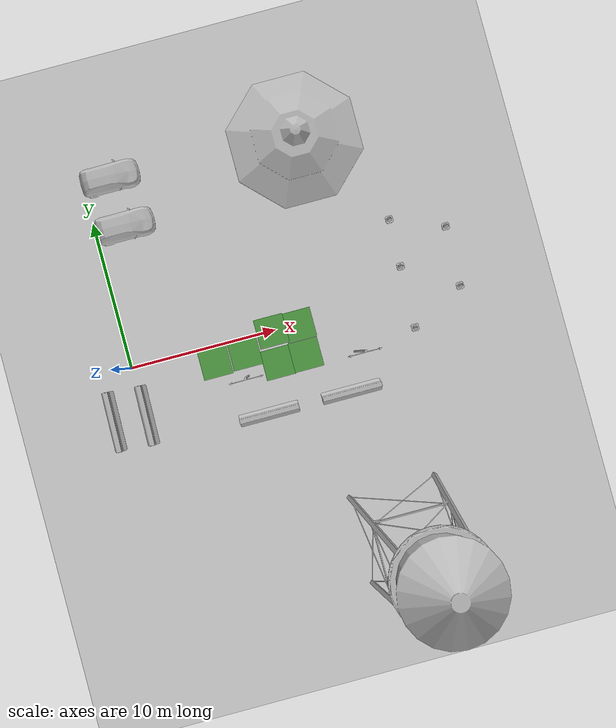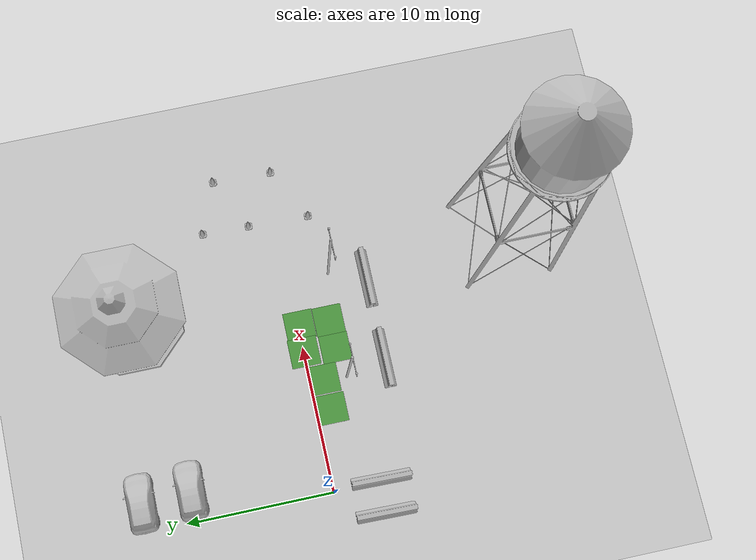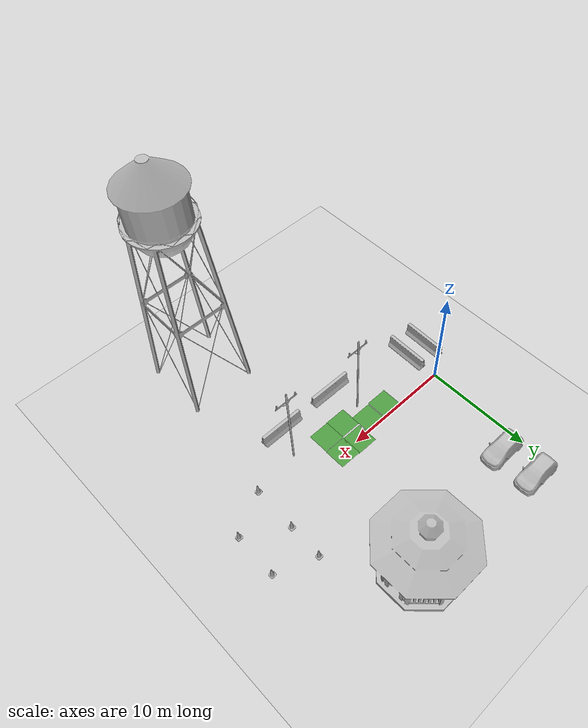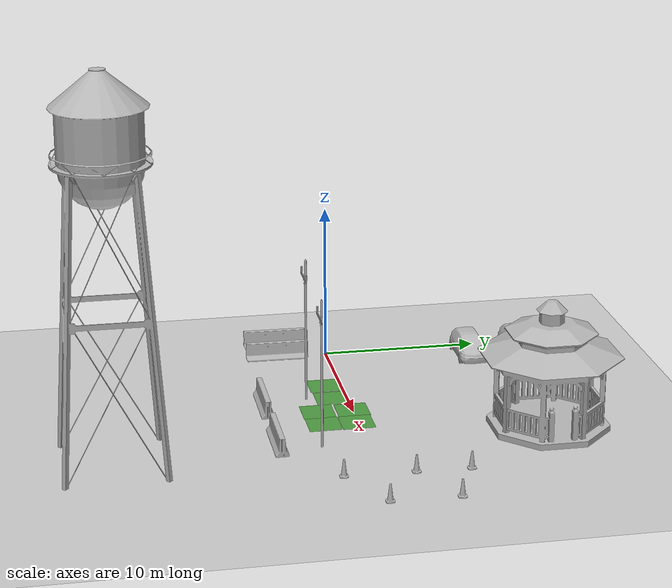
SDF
<sdf version="1.7">
 <world name="default">
  <light name="sun" type="directional">
   <pose>0 0 10 0 -0 0</pose>
   <diffuse>0.8 0.8 0.8 1</diffuse>
   <specular>0.2 0.2 0.2 1</specular>
   <attenuation>
    <range>1000</range>
    <constant>0.9</constant>
    <linear>0.01</linear>
    <quadratic>0.001</quadratic>
   </attenuation>
   <direction>-0.5 0.1 -0.9</direction>
   <spot><inner_angle>0</inner_angle><outer_angle>0</outer_angle><falloff>0</falloff></spot>
  </light>
  <model name="ground_plane">
   <static>1</static>
   <link name="link">
    <collision name="collision">
     <geometry><plane><normal>0 0 1</normal><size>100 100</size></plane></geometry>
     <surface><friction><ode><mu>100</mu><mu2>50</mu2></ode></friction></surface>
    </collision>
    <visual name="visual">
     <cast_shadows>0</cast_shadows>
     <geometry><plane><normal>0 0 1</normal><size>100 100</size></plane></geometry>
     <material>
      <script><uri>file://media/materials/scripts/gazebo.material</uri><name>Gazebo/Grey</name></script>
     </material>
    </visual>
   </link>
  </model>
  <gravity>0 0 -9.8</gravity>
  <magnetic_field>6e-06 2.3e-05 -4.2e-05</magnetic_field>
  <atmosphere type="adiabatic"/>
  <physics type="ode">
   <max_step_size>0.001</max_step_size>
   <real_time_factor>1</real_time_factor>
   <real_time_update_rate>1000</real_time_update_rate>
  </physics>
  <scene><ambient>0.4 0.4 0.4 1</ambient><background>0.7 0.7 0.7 1</background><shadows>1</shadows></scene>
  <audio><device>default</device></audio>
  <spherical_coordinates>
   <surface_model>EARTH_WGS84</surface_model>
   <latitude_deg>0</latitude_deg>
   <longitude_deg>0</longitude_deg>
   <elevation>0</elevation>
   <heading_deg>0</heading_deg>
  </spherical_coordinates>
  <model name="gazebo">
   <static>1</static>
   <link name="link">
    <collision name="collision">
     <geometry><mesh><scale>3 3 2.5</scale><uri>model://gazebo/meshes/gazebo.dae</uri></mesh></geometry>
    </collision>
    <visual name="visual">
     <geometry><mesh><scale>3 3 2.5</scale><uri>model://gazebo/meshes/gazebo.dae</uri></mesh></geometry>
    </visual>
   </link>
   <pose>14.1842 11.1605 0 0 -0 0</pose>
  </model>
  <model name="Construction Cone">
   <link name="link">
    <collision name="collision">
     <geometry>
      <mesh><scale>10 10 10</scale><uri>model://construction_cone/meshes/construction_cone.dae</uri></mesh>
     </geometry>
    </collision>
    <visual name="visual">
     <geometry>
      <mesh><scale>10 10 10</scale><uri>model://construction_cone/meshes/construction_cone.dae</uri></mesh>
     </geometry>
    </visual>
    <inertial>
     <inertia><ixx>1</ixx><ixy>0</ixy><ixz>0</ixz><iyy>1</iyy><iyz>0</iyz><izz>1</izz></inertia>
     <mass>1</mass>
    </inertial>
   </link>
   <pose>19.2424 5.15999 0 -2e-06 -0 -0</pose>
  </model>
  <model name="Construction Cone_0">
   <link name="link">
    <collision name="collision">
     <geometry>
      <mesh><scale>10 10 10</scale><uri>model://construction_cone/meshes/construction_cone.dae</uri></mesh>
     </geometry>
    </collision>
    <visual name="visual">
     <geometry>
      <mesh><scale>10 10 10</scale><uri>model://construction_cone/meshes/construction_cone.dae</uri></mesh>
     </geometry>
    </visual>
    <inertial>
     <inertia><ixx>1</ixx><ixy>0</ixy><ixz>0</ixz><iyy>1</iyy><iyz>0</iyz><izz>1</izz></inertia>
     <mass>1</mass>
    </inertial>
   </link>
   <pose>19.1525 1.9285 -0 0 -1e-06 0</pose>
  </model>
  <model name="Construction Cone_1">
   <link name="link">
    <collision name="collision">
     <geometry>
      <mesh><scale>10 10 10</scale><uri>model://construction_cone/meshes/construction_cone.dae</uri></mesh>
     </geometry>
    </collision>
    <visual name="visual">
     <geometry>
      <mesh><scale>10 10 10</scale><uri>model://construction_cone/meshes/construction_cone.dae</uri></mesh>
     </geometry>
    </visual>
    <inertial>
     <inertia><ixx>1</ixx><ixy>0</ixy><ixz>0</ixz><iyy>1</iyy><iyz>0</iyz><izz>1</izz></inertia>
     <mass>1</mass>
    </inertial>
   </link>
   <pose>19.023 -2.26898 -0 0 -1e-06 0</pose>
  </model>
  <model name="Construction Cone_2">
   <link name="link">
    <collision name="collision">
     <geometry>
      <mesh><scale>10 10 10</scale><uri>model://construction_cone/meshes/construction_cone.dae</uri></mesh>
     </geometry>
    </collision>
    <visual name="visual">
     <geometry>
      <mesh><scale>10 10 10</scale><uri>model://construction_cone/meshes/construction_cone.dae</uri></mesh>
     </geometry>
    </visual>
    <inertial>
     <inertia><ixx>1</ixx><ixy>0</ixy><ixz>0</ixz><iyy>1</iyy><iyz>0</iyz><izz>1</izz></inertia>
     <mass>1</mass>
    </inertial>
   </link>
   <pose>22.7685 3.74531 -0 0 -1e-06 0</pose>
  </model>
  <model name="Construction Cone_3">
   <link name="link">
    <collision name="collision">
     <geometry>
      <mesh><scale>10 10 10</scale><uri>model://construction_cone/meshes/construction_cone.dae</uri></mesh>
     </geometry>
    </collision>
    <visual name="visual">
     <geometry>
      <mesh><scale>10 10 10</scale><uri>model://construction_cone/meshes/construction_cone.dae</uri></mesh>
     </geometry>
    </visual>
    <inertial>
     <inertia><ixx>1</ixx><ixy>0</ixy><ixz>0</ixz><iyy>1</iyy><iyz>0</iyz><izz>1</izz></inertia>
     <mass>1</mass>
    </inertial>
   </link>
   <pose>22.6603 -0.339241 -8e-06 0 1e-06 0</pose>
  </model>
  <model name="jersey_barrier_2">
   <static>1</static>
   <link name="link">
    <visual name="visual">
     <geometry><mesh><uri>model://jersey_barrier/meshes/jersey_barrier.dae</uri></mesh></geometry>
    </visual>
    <collision name="upright">
     <pose>0 0 0.5715 0 -0 0</pose>
     <geometry><box><size>4.06542 0.3063 1.143</size></box></geometry>
    </collision>
    <collision name="base">
     <pose>0 0 0.032258 0 -0 0</pose>
     <geometry><box><size>4.06542 0.8107 0.064516</size></box></geometry>
    </collision>
    <collision name="base2">
     <pose>0 0 0.1 0 -0 0</pose>
     <geometry><box><size>4.06542 0.65 0.1</size></box></geometry>
    </collision>
    <collision name="base3">
     <pose>0 0 0.2 0 -0 0</pose>
     <geometry><box><size>4.06542 0.5 0.1</size></box></geometry>
    </collision>
    <collision name="left-angle">
     <pose>0 -0.224 0.2401 0.9 -0 0</pose>
     <geometry><box><size>4.06542 0.5 0.064516</size></box></geometry>
    </collision>
    <collision name="right-angle">
     <pose>0 0.224 0.2401 -0.9 0 0</pose>
     <geometry><box><size>4.06542 0.5 0.064516</size></box></geometry>
    </collision>
   </link>
   <pose>8.12398 -5.29357 0 0 -0 0</pose>
  </model>
  <model name="jersey_barrier_3">
   <static>1</static>
   <link name="link">
    <visual name="visual">
     <geometry><mesh><uri>model://jersey_barrier/meshes/jersey_barrier.dae</uri></mesh></geometry>
    </visual>
    <collision name="upright">
     <pose>0 0 0.5715 0 -0 0</pose>
     <geometry><box><size>4.06542 0.3063 1.143</size></box></geometry>
    </collision>
    <collision name="base">
     <pose>0 0 0.032258 0 -0 0</pose>
     <geometry><box><size>4.06542 0.8107 0.064516</size></box></geometry>
    </collision>
    <collision name="base2">
     <pose>0 0 0.1 0 -0 0</pose>
     <geometry><box><size>4.06542 0.65 0.1</size></box></geometry>
    </collision>
    <collision name="base3">
     <pose>0 0 0.2 0 -0 0</pose>
     <geometry><box><size>4.06542 0.5 0.1</size></box></geometry>
    </collision>
    <collision name="left-angle">
     <pose>0 -0.224 0.2401 0.9 -0 0</pose>
     <geometry><box><size>4.06542 0.5 0.064516</size></box></geometry>
    </collision>
    <collision name="right-angle">
     <pose>0 0.224 0.2401 -0.9 0 0</pose>
     <geometry><box><size>4.06542 0.5 0.064516</size></box></geometry>
    </collision>
   </link>
   <pose>13.7973 -5.28783 0 0 -0 0</pose>
  </model>
  <model name="hatchback_red">
   <static>1</static>
   <link name="link">
    <collision name="collision">
     <pose>0 0 0 0 -0 1.5708</pose>
     <geometry>
      <mesh><scale>0.0254 0.0254 0.0254</scale><uri>model://hatchback_red/meshes/hatchback.obj</uri></mesh>
     </geometry>
    </collision>
    <visual name="visual">
     <pose>0 0 0 0 -0 1.5708</pose>
     <geometry>
      <mesh><scale>0.0254 0.0254 0.0254</scale><uri>model://hatchback_red/meshes/hatchback.obj</uri></mesh>
     </geometry>
    </visual>
   </link>
   <pose>1.59787 12.6351 0 0 -0 0</pose>
  </model>
  <model name="hatchback_blue">
   <static>1</static>
   <link name="link">
    <collision name="collision">
     <pose>0 0 0 0 -0 1.5708</pose>
     <geometry>
      <mesh><scale>0.0254 0.0254 0.0254</scale><uri>model://hatchback_blue/meshes/hatchback.obj</uri></mesh>
     </geometry>
    </collision>
    <visual name="visual">
     <pose>0 0 0 0 -0 1.5708</pose>
     <geometry>
      <mesh><scale>0.0254 0.0254 0.0254</scale><uri>model://hatchback_blue/meshes/hatchback.obj</uri></mesh>
     </geometry>
    </visual>
   </link>
   <pose>1.74609 9.27222 0 0 -0 0</pose>
  </model>
  <model name="water_tower">
   <static>1</static>
   <link name="link">
    <collision name="collision">
     <geometry><mesh><uri>model://water_tower/meshes/water_tower.dae</uri></mesh></geometry>
    </collision>
    <visual name="visual">
     <geometry><mesh><uri>model://water_tower/meshes/water_tower.dae</uri></mesh></geometry>
    </visual>
   </link>
   <pose>14.7465 -14.998 0 0 -0 0</pose>
  </model>
  <model name="telephone_pole">
   <static>1</static>
   <link name="link">
    <collision name="collision_pole">
     <pose>0 0 4.572 0 -0 0</pose>
     <geometry><cylinder><radius>0.0779475</radius><length>9.144</length></cylinder></geometry>
    </collision>
    <collision name="collision_cross">
     <pose>0 -0.098806 8.04836 0 -0 0</pose>
     <geometry><box><size>2.11606 0.041763 0.177806</size></box></geometry>
    </collision>
    <visual name="visual">
     <geometry><mesh><uri>model://telephone_pole/meshes/telephone_pole.dae</uri></mesh></geometry>
    </visual>
   </link>
   <pose>14.7051 -2.78035 0 0 -0 0</pose>
  </model>
  <model name="telephone_pole_0">
   <static>1</static>
   <link name="link">
    <collision name="collision_pole">
     <pose>0 0 4.572 0 -0 0</pose>
     <geometry><cylinder><radius>0.0779475</radius><length>9.144</length></cylinder></geometry>
    </collision>
    <collision name="collision_cross">
     <pose>0 -0.098806 8.04836 0 -0 0</pose>
     <geometry><box><size>2.11606 0.041763 0.177806</size></box></geometry>
    </collision>
    <visual name="visual">
     <geometry><mesh><uri>model://telephone_pole/meshes/telephone_pole.dae</uri></mesh></geometry>
    </visual>
   </link>
   <pose>7.41743 -2.51811 0 0 -0 0</pose>
  </model>
  <model name="jersey_barrier">
   <static>1</static>
   <link name="link">
    <visual name="visual">
     <geometry><mesh><uri>model://jersey_barrier/meshes/jersey_barrier.dae</uri></mesh></geometry>
    </visual>
    <collision name="upright">
     <pose>0 0 0.5715 0 -0 0</pose>
     <geometry><box><size>4.06542 0.3063 1.143</size></box></geometry>
    </collision>
    <collision name="base">
     <pose>0 0 0.032258 0 -0 0</pose>
     <geometry><box><size>4.06542 0.8107 0.064516</size></box></geometry>
    </collision>
    <collision name="base2">
     <pose>0 0 0.1 0 -0 0</pose>
     <geometry><box><size>4.06542 0.65 0.1</size></box></geometry>
    </collision>
    <collision name="base3">
     <pose>0 0 0.2 0 -0 0</pose>
     <geometry><box><size>4.06542 0.5 0.1</size></box></geometry>
    </collision>
    <collision name="left-angle">
     <pose>0 -0.224 0.2401 0.9 -0 0</pose>
     <geometry><box><size>4.06542 0.5 0.064516</size></box></geometry>
    </collision>
    <collision name="right-angle">
     <pose>0 0.224 0.2401 -0.9 0 0</pose>
     <geometry><box><size>4.06542 0.5 0.064516</size></box></geometry>
    </collision>
   </link>
   <pose>-2.00874 -3.14004 0 0 -0 1.5512</pose>
  </model>
  <model name="jersey_barrier_clone">
   <static>1</static>
   <link name="link">
    <visual name="visual">
     <geometry><mesh><uri>model://jersey_barrier/meshes/jersey_barrier.dae</uri></mesh></geometry>
    </visual>
    <collision name="upright">
     <pose>0 0 0.5715 0 -0 0</pose>
     <geometry><box><size>4.06542 0.3063 1.143</size></box></geometry>
    </collision>
    <collision name="base">
     <pose>0 0 0.032258 0 -0 0</pose>
     <geometry><box><size>4.06542 0.8107 0.064516</size></box></geometry>
    </collision>
    <collision name="base2">
     <pose>0 0 0.1 0 -0 0</pose>
     <geometry><box><size>4.06542 0.65 0.1</size></box></geometry>
    </collision>
    <collision name="base3">
     <pose>0 0 0.2 0 -0 0</pose>
     <geometry><box><size>4.06542 0.5 0.1</size></box></geometry>
    </collision>
    <collision name="left-angle">
     <pose>0 -0.224 0.2401 0.9 -0 0</pose>
     <geometry><box><size>4.06542 0.5 0.064516</size></box></geometry>
    </collision>
    <collision name="right-angle">
     <pose>0 0.224 0.2401 -0.9 0 0</pose>
     <geometry><box><size>4.06542 0.5 0.064516</size></box></geometry>
    </collision>
   </link>
   <pose>0.205374 -3.28418 0 0 -0 1.5512</pose>
  </model>
  <model name="grass">
   <static>1</static>
   <link name="grass_plane">
    <visual name="visual">
     <pose>0 0 0.01 0 -0 0</pose>
     <cast_shadows>0</cast_shadows>
     <geometry><plane><normal>0 0 1</normal><size>2 2</size></plane></geometry>
     <material>
      <script>
       <uri>model://grass/materials/scripts</uri>
       <uri>model://grass/materials/textures</uri>
       <name>vrc/grass_small</name>
      </script>
     </material>
    </visual>
   </link>
   <pose>5.50683 -1.06305 0 0 -0 0</pose>
  </model>
  <model name="grass_0">
   <static>1</static>
   <link name="grass_plane">
    <visual name="visual">
     <pose>0 0 0.01 0 -0 0</pose>
     <cast_shadows>0</cast_shadows>
     <geometry><plane><normal>0 0 1</normal><size>2 2</size></plane></geometry>
     <material>
      <script>
       <uri>model://grass/materials/scripts</uri>
       <uri>model://grass/materials/textures</uri>
       <name>vrc/grass_small</name>
      </script>
     </material>
    </visual>
   </link>
   <pose>7.58167 -0.975762 0 0 -0 0</pose>
  </model>
  <model name="grass_1">
   <static>1</static>
   <link name="grass_plane">
    <visual name="visual">
     <pose>0 0 0.01 0 -0 0</pose>
     <cast_shadows>0</cast_shadows>
     <geometry><plane><normal>0 0 1</normal><size>2 2</size></plane></geometry>
     <material>
      <script>
       <uri>model://grass/materials/scripts</uri>
       <uri>model://grass/materials/textures</uri>
       <name>vrc/grass_small</name>
      </script>
     </material>
    </visual>
   </link>
   <pose>9.67167 -0.026989 0 0 -0 0</pose>
  </model>
  <model name="grass_2">
   <static>1</static>
   <link name="grass_plane">
    <visual name="visual">
     <pose>0 0 0.01 0 -0 0</pose>
     <cast_shadows>0</cast_shadows>
     <geometry><plane><normal>0 0 1</normal><size>2 2</size></plane></geometry>
     <material>
      <script>
       <uri>model://grass/materials/scripts</uri>
       <uri>model://grass/materials/textures</uri>
       <name>vrc/grass_small</name>
      </script>
     </material>
    </visual>
   </link>
   <pose>11.5497 -0.097618 0 0 -0 0</pose>
  </model>
  <model name="grass_3">
   <static>1</static>
   <link name="grass_plane">
    <visual name="visual">
     <pose>0 0 0.01 0 -0 0</pose>
     <cast_shadows>0</cast_shadows>
     <geometry><plane><normal>0 0 1</normal><size>2 2</size></plane></geometry>
     <material>
      <script>
       <uri>model://grass/materials/scripts</uri>
       <uri>model://grass/materials/textures</uri>
       <name>vrc/grass_small</name>
      </script>
     </material>
    </visual>
   </link>
   <pose>11.5019 -2.1338 0 0 -0 0</pose>
  </model>
  <model name="grass_4">
   <static>1</static>
   <link name="grass_plane">
    <visual name="visual">
     <pose>0 0 0.01 0 -0 0</pose>
     <cast_shadows>0</cast_shadows>
     <geometry><plane><normal>0 0 1</normal><size>2 2</size></plane></geometry>
     <material>
      <script>
       <uri>model://grass/materials/scripts</uri>
       <uri>model://grass/materials/textures</uri>
       <name>vrc/grass_small</name>
      </script>
     </material>
    </visual>
   </link>
   <pose>9.55445 -2.17058 0 0 -0 0</pose>
  </model>
 </world>
</sdf>
